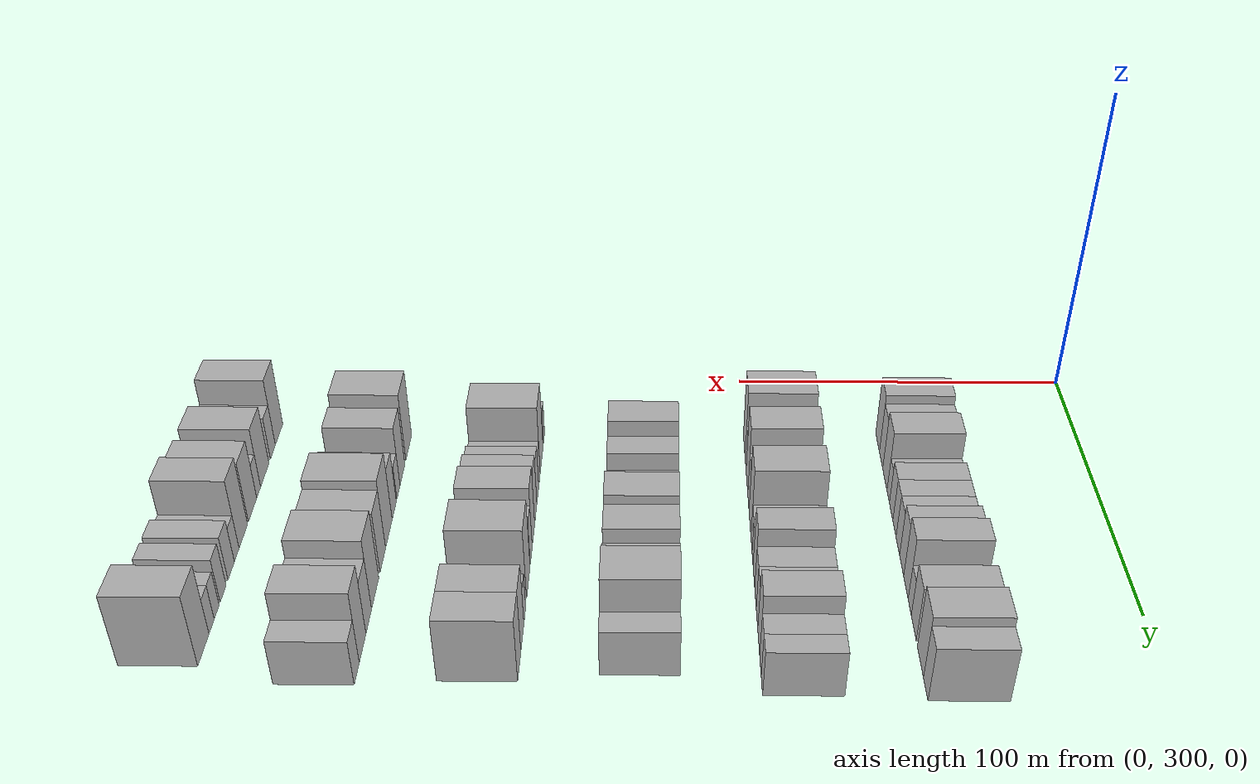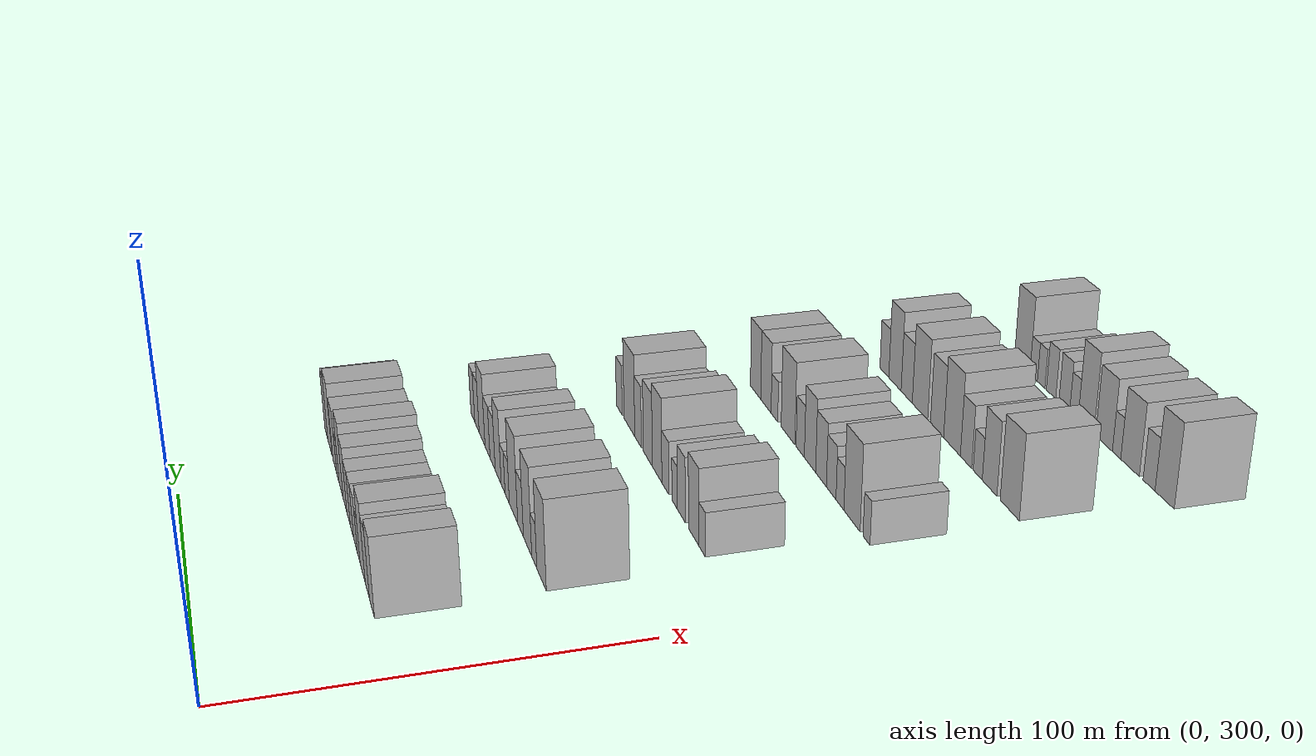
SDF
<sdf version="1.6">
 <world name="default">
  <model name="building_100">
   <static>1</static>
   <pose>50.0000 329.9913 0 0.000000 0.000000 0.000000</pose>
   <link name="link">
    <pose>0 0 10.50 0 0 0</pose>
    <collision name="collision"><geometry><box><size>20.0000 8.8696 21.0000</size></box></geometry></collision>
    <visual name="visual">
     <cast_shadows>0</cast_shadows>
     <geometry><box><size>20.0000 8.8696 21.0000</size></box></geometry>
     <material>
      <script>
       <uri>model://HANNAS_wall/materials/scripts</uri>
       <uri>model://HANNAS_wall/materials/textures</uri>
       <name>vrc/HANNAS_wall</name>
      </script>
     </material>
    </visual>
   </link>
  </model>
  <model name="building_101">
   <static>1</static>
   <pose>50.0000 338.2777 0 0.000000 0.000000 0.000000</pose>
   <link name="link">
    <pose>0 0 9.00 0 0 0</pose>
    <collision name="collision"><geometry><box><size>20.0000 7.7031 18.0000</size></box></geometry></collision>
    <visual name="visual">
     <cast_shadows>0</cast_shadows>
     <geometry><box><size>20.0000 7.7031 18.0000</size></box></geometry>
     <material>
      <script>
       <uri>model://HANNAS_wall/materials/scripts</uri>
       <uri>model://HANNAS_wall/materials/textures</uri>
       <name>vrc/HANNAS_wall</name>
      </script>
     </material>
    </visual>
   </link>
  </model>
  <model name="building_102">
   <static>1</static>
   <pose>50.0000 346.9442 0 0.000000 0.000000 0.000000</pose>
   <link name="link">
    <pose>0 0 10.50 0 0 0</pose>
    <collision name="collision"><geometry><box><size>20.0000 9.6299 21.0000</size></box></geometry></collision>
    <visual name="visual">
     <cast_shadows>0</cast_shadows>
     <geometry><box><size>20.0000 9.6299 21.0000</size></box></geometry>
     <material>
      <script>
       <uri>model://HANNAS_wall/materials/scripts</uri>
       <uri>model://HANNAS_wall/materials/textures</uri>
       <name>vrc/HANNAS_wall</name>
      </script>
     </material>
    </visual>
   </link>
  </model>
  <model name="building_103">
   <static>1</static>
   <pose>50.0000 354.4089 0 0.000000 0.000000 0.000000</pose>
   <link name="link">
    <pose>0 0 6.00 0 0 0</pose>
    <collision name="collision"><geometry><box><size>20.0000 5.2996 12.0000</size></box></geometry></collision>
    <visual name="visual">
     <cast_shadows>0</cast_shadows>
     <geometry><box><size>20.0000 5.2996 12.0000</size></box></geometry>
     <material>
      <script>
       <uri>model://HANNAS_wall/materials/scripts</uri>
       <uri>model://HANNAS_wall/materials/textures</uri>
       <name>vrc/HANNAS_wall</name>
      </script>
     </material>
    </visual>
   </link>
  </model>
  <model name="building_104">
   <static>1</static>
   <pose>50.0000 360.7432 0 0.000000 0.000000 0.000000</pose>
   <link name="link">
    <pose>0 0 7.50 0 0 0</pose>
    <collision name="collision"><geometry><box><size>20.0000 7.3689 15.0000</size></box></geometry></collision>
    <visual name="visual">
     <cast_shadows>0</cast_shadows>
     <geometry><box><size>20.0000 7.3689 15.0000</size></box></geometry>
     <material>
      <script>
       <uri>model://HANNAS_wall/materials/scripts</uri>
       <uri>model://HANNAS_wall/materials/textures</uri>
       <name>vrc/HANNAS_wall</name>
      </script>
     </material>
    </visual>
   </link>
  </model>
  <model name="building_105">
   <static>1</static>
   <pose>50.0000 367.7625 0 0.000000 0.000000 0.000000</pose>
   <link name="link">
    <pose>0 0 7.50 0 0 0</pose>
    <collision name="collision"><geometry><box><size>20.0000 6.6696 15.0000</size></box></geometry></collision>
    <visual name="visual">
     <cast_shadows>0</cast_shadows>
     <geometry><box><size>20.0000 6.6696 15.0000</size></box></geometry>
     <material>
      <script>
       <uri>model://HANNAS_wall/materials/scripts</uri>
       <uri>model://HANNAS_wall/materials/textures</uri>
       <name>vrc/HANNAS_wall</name>
      </script>
     </material>
    </visual>
   </link>
  </model>
  <model name="building_106">
   <static>1</static>
   <pose>50.0000 374.7107 0 0.000000 0.000000 0.000000</pose>
   <link name="link">
    <pose>0 0 7.50 0 0 0</pose>
    <collision name="collision"><geometry><box><size>20.0000 7.2268 15.0000</size></box></geometry></collision>
    <visual name="visual">
     <cast_shadows>0</cast_shadows>
     <geometry><box><size>20.0000 7.2268 15.0000</size></box></geometry>
     <material>
      <script>
       <uri>model://HANNAS_wall/materials/scripts</uri>
       <uri>model://HANNAS_wall/materials/textures</uri>
       <name>vrc/HANNAS_wall</name>
      </script>
     </material>
    </visual>
   </link>
  </model>
  <model name="building_107">
   <static>1</static>
   <pose>50.0000 382.3287 0 0.000000 0.000000 0.000000</pose>
   <link name="link">
    <pose>0 0 9.00 0 0 0</pose>
    <collision name="collision"><geometry><box><size>20.0000 8.0092 18.0000</size></box></geometry></collision>
    <visual name="visual">
     <cast_shadows>0</cast_shadows>
     <geometry><box><size>20.0000 8.0092 18.0000</size></box></geometry>
     <material>
      <script>
       <uri>model://HANNAS_wall/materials/scripts</uri>
       <uri>model://HANNAS_wall/materials/textures</uri>
       <name>vrc/HANNAS_wall</name>
      </script>
     </material>
    </visual>
   </link>
  </model>
  <model name="building_108">
   <static>1</static>
   <pose>50.0000 390.5908 0 0.000000 0.000000 0.000000</pose>
   <link name="link">
    <pose>0 0 10.50 0 0 0</pose>
    <collision name="collision"><geometry><box><size>20.0000 8.5150 21.0000</size></box></geometry></collision>
    <visual name="visual">
     <cast_shadows>0</cast_shadows>
     <geometry><box><size>20.0000 8.5150 21.0000</size></box></geometry>
     <material>
      <script>
       <uri>model://HANNAS_wall/materials/scripts</uri>
       <uri>model://HANNAS_wall/materials/textures</uri>
       <name>vrc/HANNAS_wall</name>
      </script>
     </material>
    </visual>
   </link>
  </model>
  <model name="building_109">
   <static>1</static>
   <pose>50.0000 397.7222 0 0.000000 0.000000 0.000000</pose>
   <link name="link">
    <pose>0 0 6.00 0 0 0</pose>
    <collision name="collision"><geometry><box><size>20.0000 5.7477 12.0000</size></box></geometry></collision>
    <visual name="visual">
     <cast_shadows>0</cast_shadows>
     <geometry><box><size>20.0000 5.7477 12.0000</size></box></geometry>
     <material>
      <script>
       <uri>model://HANNAS_wall/materials/scripts</uri>
       <uri>model://HANNAS_wall/materials/textures</uri>
       <name>vrc/HANNAS_wall</name>
      </script>
     </material>
    </visual>
   </link>
  </model>
  <model name="building_110">
   <static>1</static>
   <pose>50.0000 404.9812 0 0.000000 0.000000 0.000000</pose>
   <link name="link">
    <pose>0 0 9.00 0 0 0</pose>
    <collision name="collision"><geometry><box><size>20.0000 8.7704 18.0000</size></box></geometry></collision>
    <visual name="visual">
     <cast_shadows>0</cast_shadows>
     <geometry><box><size>20.0000 8.7704 18.0000</size></box></geometry>
     <material>
      <script>
       <uri>model://HANNAS_wall/materials/scripts</uri>
       <uri>model://HANNAS_wall/materials/textures</uri>
       <name>vrc/HANNAS_wall</name>
      </script>
     </material>
    </visual>
   </link>
  </model>
  <model name="building_111">
   <static>1</static>
   <pose>50.0000 416.4933 0 0.000000 0.000000 0.000000</pose>
   <link name="link">
    <pose>0 0 10.50 0 0 0</pose>
    <collision name="collision"><geometry><box><size>20.0000 10.2536 21.0000</size></box></geometry></collision>
    <visual name="visual">
     <cast_shadows>0</cast_shadows>
     <geometry><box><size>20.0000 10.2536 21.0000</size></box></geometry>
     <material>
      <script>
       <uri>model://HANNAS_wall/materials/scripts</uri>
       <uri>model://HANNAS_wall/materials/textures</uri>
       <name>vrc/HANNAS_wall</name>
      </script>
     </material>
    </visual>
   </link>
  </model>
  <model name="building_112">
   <static>1</static>
   <pose>50.0000 425.2875 0 0.000000 0.000000 0.000000</pose>
   <link name="link">
    <pose>0 0 9.00 0 0 0</pose>
    <collision name="collision"><geometry><box><size>20.0000 7.3349 18.0000</size></box></geometry></collision>
    <visual name="visual">
     <cast_shadows>0</cast_shadows>
     <geometry><box><size>20.0000 7.3349 18.0000</size></box></geometry>
     <material>
      <script>
       <uri>model://HANNAS_wall/materials/scripts</uri>
       <uri>model://HANNAS_wall/materials/textures</uri>
       <name>vrc/HANNAS_wall</name>
      </script>
     </material>
    </visual>
   </link>
  </model>
  <model name="building_240">
   <static>1</static>
   <pose>90.0000 332.2897 0 0.000000 0.000000 0.000000</pose>
   <link name="link">
    <pose>0 0 12.00 0 0 0</pose>
    <collision name="collision"><geometry><box><size>20.0000 10.8834 24.0000</size></box></geometry></collision>
    <visual name="visual">
     <cast_shadows>0</cast_shadows>
     <geometry><box><size>20.0000 10.8834 24.0000</size></box></geometry>
     <material>
      <script>
       <uri>model://HANNAS_wall/materials/scripts</uri>
       <uri>model://HANNAS_wall/materials/textures</uri>
       <name>vrc/HANNAS_wall</name>
      </script>
     </material>
    </visual>
   </link>
  </model>
  <model name="building_241">
   <static>1</static>
   <pose>90.0000 340.7151 0 0.000000 0.000000 0.000000</pose>
   <link name="link">
    <pose>0 0 6.00 0 0 0</pose>
    <collision name="collision"><geometry><box><size>20.0000 5.9675 12.0000</size></box></geometry></collision>
    <visual name="visual">
     <cast_shadows>0</cast_shadows>
     <geometry><box><size>20.0000 5.9675 12.0000</size></box></geometry>
     <material>
      <script>
       <uri>model://HANNAS_wall/materials/scripts</uri>
       <uri>model://HANNAS_wall/materials/textures</uri>
       <name>vrc/HANNAS_wall</name>
      </script>
     </material>
    </visual>
   </link>
  </model>
  <model name="building_242">
   <static>1</static>
   <pose>90.0000 348.7701 0 0.000000 0.000000 0.000000</pose>
   <link name="link">
    <pose>0 0 12.00 0 0 0</pose>
    <collision name="collision"><geometry><box><size>20.0000 10.1425 24.0000</size></box></geometry></collision>
    <visual name="visual">
     <cast_shadows>0</cast_shadows>
     <geometry><box><size>20.0000 10.1425 24.0000</size></box></geometry>
     <material>
      <script>
       <uri>model://HANNAS_wall/materials/scripts</uri>
       <uri>model://HANNAS_wall/materials/textures</uri>
       <name>vrc/HANNAS_wall</name>
      </script>
     </material>
    </visual>
   </link>
  </model>
  <model name="building_243">
   <static>1</static>
   <pose>90.0000 357.4268 0 0.000000 0.000000 0.000000</pose>
   <link name="link">
    <pose>0 0 7.50 0 0 0</pose>
    <collision name="collision"><geometry><box><size>20.0000 7.1709 15.0000</size></box></geometry></collision>
    <visual name="visual">
     <cast_shadows>0</cast_shadows>
     <geometry><box><size>20.0000 7.1709 15.0000</size></box></geometry>
     <material>
      <script>
       <uri>model://HANNAS_wall/materials/scripts</uri>
       <uri>model://HANNAS_wall/materials/textures</uri>
       <name>vrc/HANNAS_wall</name>
      </script>
     </material>
    </visual>
   </link>
  </model>
  <model name="building_244">
   <static>1</static>
   <pose>90.0000 366.4395 0 0.000000 0.000000 0.000000</pose>
   <link name="link">
    <pose>0 0 12.00 0 0 0</pose>
    <collision name="collision"><geometry><box><size>20.0000 10.8544 24.0000</size></box></geometry></collision>
    <visual name="visual">
     <cast_shadows>0</cast_shadows>
     <geometry><box><size>20.0000 10.8544 24.0000</size></box></geometry>
     <material>
      <script>
       <uri>model://HANNAS_wall/materials/scripts</uri>
       <uri>model://HANNAS_wall/materials/textures</uri>
       <name>vrc/HANNAS_wall</name>
      </script>
     </material>
    </visual>
   </link>
  </model>
  <model name="building_245">
   <static>1</static>
   <pose>90.0000 374.7660 0 0.000000 0.000000 0.000000</pose>
   <link name="link">
    <pose>0 0 6.00 0 0 0</pose>
    <collision name="collision"><geometry><box><size>20.0000 5.7987 12.0000</size></box></geometry></collision>
    <visual name="visual">
     <cast_shadows>0</cast_shadows>
     <geometry><box><size>20.0000 5.7987 12.0000</size></box></geometry>
     <material>
      <script>
       <uri>model://HANNAS_wall/materials/scripts</uri>
       <uri>model://HANNAS_wall/materials/textures</uri>
       <name>vrc/HANNAS_wall</name>
      </script>
     </material>
    </visual>
   </link>
  </model>
  <model name="building_246">
   <static>1</static>
   <pose>90.0000 380.2602 0 0.000000 0.000000 0.000000</pose>
   <link name="link">
    <pose>0 0 6.00 0 0 0</pose>
    <collision name="collision"><geometry><box><size>20.0000 5.1897 12.0000</size></box></geometry></collision>
    <visual name="visual">
     <cast_shadows>0</cast_shadows>
     <geometry><box><size>20.0000 5.1897 12.0000</size></box></geometry>
     <material>
      <script>
       <uri>model://HANNAS_wall/materials/scripts</uri>
       <uri>model://HANNAS_wall/materials/textures</uri>
       <name>vrc/HANNAS_wall</name>
      </script>
     </material>
    </visual>
   </link>
  </model>
  <model name="building_247">
   <static>1</static>
   <pose>90.0000 387.0678 0 0.000000 0.000000 0.000000</pose>
   <link name="link">
    <pose>0 0 10.50 0 0 0</pose>
    <collision name="collision"><geometry><box><size>20.0000 8.4255 21.0000</size></box></geometry></collision>
    <visual name="visual">
     <cast_shadows>0</cast_shadows>
     <geometry><box><size>20.0000 8.4255 21.0000</size></box></geometry>
     <material>
      <script>
       <uri>model://HANNAS_wall/materials/scripts</uri>
       <uri>model://HANNAS_wall/materials/textures</uri>
       <name>vrc/HANNAS_wall</name>
      </script>
     </material>
    </visual>
   </link>
  </model>
  <model name="building_248">
   <static>1</static>
   <pose>90.0000 394.9861 0 0.000000 0.000000 0.000000</pose>
   <link name="link">
    <pose>0 0 7.50 0 0 0</pose>
    <collision name="collision"><geometry><box><size>20.0000 7.4111 15.0000</size></box></geometry></collision>
    <visual name="visual">
     <cast_shadows>0</cast_shadows>
     <geometry><box><size>20.0000 7.4111 15.0000</size></box></geometry>
     <material>
      <script>
       <uri>model://HANNAS_wall/materials/scripts</uri>
       <uri>model://HANNAS_wall/materials/textures</uri>
       <name>vrc/HANNAS_wall</name>
      </script>
     </material>
    </visual>
   </link>
  </model>
  <model name="building_249">
   <static>1</static>
   <pose>90.0000 402.3871 0 0.000000 0.000000 0.000000</pose>
   <link name="link">
    <pose>0 0 7.50 0 0 0</pose>
    <collision name="collision"><geometry><box><size>20.0000 7.3908 15.0000</size></box></geometry></collision>
    <visual name="visual">
     <cast_shadows>0</cast_shadows>
     <geometry><box><size>20.0000 7.3908 15.0000</size></box></geometry>
     <material>
      <script>
       <uri>model://HANNAS_wall/materials/scripts</uri>
       <uri>model://HANNAS_wall/materials/textures</uri>
       <name>vrc/HANNAS_wall</name>
      </script>
     </material>
    </visual>
   </link>
  </model>
  <model name="building_250">
   <static>1</static>
   <pose>90.0000 410.5227 0 0.000000 0.000000 0.000000</pose>
   <link name="link">
    <pose>0 0 10.50 0 0 0</pose>
    <collision name="collision"><geometry><box><size>20.0000 8.8805 21.0000</size></box></geometry></collision>
    <visual name="visual">
     <cast_shadows>0</cast_shadows>
     <geometry><box><size>20.0000 8.8805 21.0000</size></box></geometry>
     <material>
      <script>
       <uri>model://HANNAS_wall/materials/scripts</uri>
       <uri>model://HANNAS_wall/materials/textures</uri>
       <name>vrc/HANNAS_wall</name>
      </script>
     </material>
    </visual>
   </link>
  </model>
  <model name="building_251">
   <static>1</static>
   <pose>90.0000 418.3257 0 0.000000 0.000000 0.000000</pose>
   <link name="link">
    <pose>0 0 7.50 0 0 0</pose>
    <collision name="collision"><geometry><box><size>20.0000 6.7255 15.0000</size></box></geometry></collision>
    <visual name="visual">
     <cast_shadows>0</cast_shadows>
     <geometry><box><size>20.0000 6.7255 15.0000</size></box></geometry>
     <material>
      <script>
       <uri>model://HANNAS_wall/materials/scripts</uri>
       <uri>model://HANNAS_wall/materials/textures</uri>
       <name>vrc/HANNAS_wall</name>
      </script>
     </material>
    </visual>
   </link>
  </model>
  <model name="building_252">
   <static>1</static>
   <pose>90.0000 424.7276 0 0.000000 0.000000 0.000000</pose>
   <link name="link">
    <pose>0 0 7.50 0 0 0</pose>
    <collision name="collision"><geometry><box><size>20.0000 6.0783 15.0000</size></box></geometry></collision>
    <visual name="visual">
     <cast_shadows>0</cast_shadows>
     <geometry><box><size>20.0000 6.0783 15.0000</size></box></geometry>
     <material>
      <script>
       <uri>model://HANNAS_wall/materials/scripts</uri>
       <uri>model://HANNAS_wall/materials/textures</uri>
       <name>vrc/HANNAS_wall</name>
      </script>
     </material>
    </visual>
   </link>
  </model>
  <model name="building_382">
   <static>1</static>
   <pose>130.0000 334.9451 0 0.000000 0.000000 0.000000</pose>
   <link name="link">
    <pose>0 0 6.00 0 0 0</pose>
    <collision name="collision"><geometry><box><size>20.0000 5.6402 12.0000</size></box></geometry></collision>
    <visual name="visual">
     <cast_shadows>0</cast_shadows>
     <geometry><box><size>20.0000 5.6402 12.0000</size></box></geometry>
     <material>
      <script>
       <uri>model://HANNAS_wall/materials/scripts</uri>
       <uri>model://HANNAS_wall/materials/textures</uri>
       <name>vrc/HANNAS_wall</name>
      </script>
     </material>
    </visual>
   </link>
  </model>
  <model name="building_383">
   <static>1</static>
   <pose>130.0000 342.4481 0 0.000000 0.000000 0.000000</pose>
   <link name="link">
    <pose>0 0 10.50 0 0 0</pose>
    <collision name="collision"><geometry><box><size>20.0000 9.3658 21.0000</size></box></geometry></collision>
    <visual name="visual">
     <cast_shadows>0</cast_shadows>
     <geometry><box><size>20.0000 9.3658 21.0000</size></box></geometry>
     <material>
      <script>
       <uri>model://HANNAS_wall/materials/scripts</uri>
       <uri>model://HANNAS_wall/materials/textures</uri>
       <name>vrc/HANNAS_wall</name>
      </script>
     </material>
    </visual>
   </link>
  </model>
  <model name="building_384">
   <static>1</static>
   <pose>130.0000 353.9108 0 0.000000 0.000000 0.000000</pose>
   <link name="link">
    <pose>0 0 9.00 0 0 0</pose>
    <collision name="collision"><geometry><box><size>20.0000 7.5595 18.0000</size></box></geometry></collision>
    <visual name="visual">
     <cast_shadows>0</cast_shadows>
     <geometry><box><size>20.0000 7.5595 18.0000</size></box></geometry>
     <material>
      <script>
       <uri>model://HANNAS_wall/materials/scripts</uri>
       <uri>model://HANNAS_wall/materials/textures</uri>
       <name>vrc/HANNAS_wall</name>
      </script>
     </material>
    </visual>
   </link>
  </model>
  <model name="building_385">
   <static>1</static>
   <pose>130.0000 360.1818 0 0.000000 0.000000 0.000000</pose>
   <link name="link">
    <pose>0 0 6.00 0 0 0</pose>
    <collision name="collision"><geometry><box><size>20.0000 4.9825 12.0000</size></box></geometry></collision>
    <visual name="visual">
     <cast_shadows>0</cast_shadows>
     <geometry><box><size>20.0000 4.9825 12.0000</size></box></geometry>
     <material>
      <script>
       <uri>model://HANNAS_wall/materials/scripts</uri>
       <uri>model://HANNAS_wall/materials/textures</uri>
       <name>vrc/HANNAS_wall</name>
      </script>
     </material>
    </visual>
   </link>
  </model>
  <model name="building_386">
   <static>1</static>
   <pose>130.0000 369.0733 0 0.000000 0.000000 0.000000</pose>
   <link name="link">
    <pose>0 0 7.50 0 0 0</pose>
    <collision name="collision"><geometry><box><size>20.0000 6.8006 15.0000</size></box></geometry></collision>
    <visual name="visual">
     <cast_shadows>0</cast_shadows>
     <geometry><box><size>20.0000 6.8006 15.0000</size></box></geometry>
     <material>
      <script>
       <uri>model://HANNAS_wall/materials/scripts</uri>
       <uri>model://HANNAS_wall/materials/textures</uri>
       <name>vrc/HANNAS_wall</name>
      </script>
     </material>
    </visual>
   </link>
  </model>
  <model name="building_387">
   <static>1</static>
   <pose>130.0000 377.2882 0 0.000000 0.000000 0.000000</pose>
   <link name="link">
    <pose>0 0 12.00 0 0 0</pose>
    <collision name="collision"><geometry><box><size>20.0000 9.6292 24.0000</size></box></geometry></collision>
    <visual name="visual">
     <cast_shadows>0</cast_shadows>
     <geometry><box><size>20.0000 9.6292 24.0000</size></box></geometry>
     <material>
      <script>
       <uri>model://HANNAS_wall/materials/scripts</uri>
       <uri>model://HANNAS_wall/materials/textures</uri>
       <name>vrc/HANNAS_wall</name>
      </script>
     </material>
    </visual>
   </link>
  </model>
  <model name="building_388">
   <static>1</static>
   <pose>130.0000 386.8470 0 0.000000 0.000000 0.000000</pose>
   <link name="link">
    <pose>0 0 10.50 0 0 0</pose>
    <collision name="collision"><geometry><box><size>20.0000 9.4883 21.0000</size></box></geometry></collision>
    <visual name="visual">
     <cast_shadows>0</cast_shadows>
     <geometry><box><size>20.0000 9.4883 21.0000</size></box></geometry>
     <material>
      <script>
       <uri>model://HANNAS_wall/materials/scripts</uri>
       <uri>model://HANNAS_wall/materials/textures</uri>
       <name>vrc/HANNAS_wall</name>
      </script>
     </material>
    </visual>
   </link>
  </model>
  <model name="building_389">
   <static>1</static>
   <pose>130.0000 397.2224 0 0.000000 0.000000 0.000000</pose>
   <link name="link">
    <pose>0 0 9.00 0 0 0</pose>
    <collision name="collision"><geometry><box><size>20.0000 7.2627 18.0000</size></box></geometry></collision>
    <visual name="visual">
     <cast_shadows>0</cast_shadows>
     <geometry><box><size>20.0000 7.2627 18.0000</size></box></geometry>
     <material>
      <script>
       <uri>model://HANNAS_wall/materials/scripts</uri>
       <uri>model://HANNAS_wall/materials/textures</uri>
       <name>vrc/HANNAS_wall</name>
      </script>
     </material>
    </visual>
   </link>
  </model>
  <model name="building_390">
   <static>1</static>
   <pose>130.0000 406.8405 0 0.000000 0.000000 0.000000</pose>
   <link name="link">
    <pose>0 0 12.00 0 0 0</pose>
    <collision name="collision"><geometry><box><size>20.0000 11.9735 24.0000</size></box></geometry></collision>
    <visual name="visual">
     <cast_shadows>0</cast_shadows>
     <geometry><box><size>20.0000 11.9735 24.0000</size></box></geometry>
     <material>
      <script>
       <uri>model://HANNAS_wall/materials/scripts</uri>
       <uri>model://HANNAS_wall/materials/textures</uri>
       <name>vrc/HANNAS_wall</name>
      </script>
     </material>
    </visual>
   </link>
  </model>
  <model name="building_391">
   <static>1</static>
   <pose>130.0000 418.2376 0 0.000000 0.000000 0.000000</pose>
   <link name="link">
    <pose>0 0 7.50 0 0 0</pose>
    <collision name="collision"><geometry><box><size>20.0000 6.8206 15.0000</size></box></geometry></collision>
    <visual name="visual">
     <cast_shadows>0</cast_shadows>
     <geometry><box><size>20.0000 6.8206 15.0000</size></box></geometry>
     <material>
      <script>
       <uri>model://HANNAS_wall/materials/scripts</uri>
       <uri>model://HANNAS_wall/materials/textures</uri>
       <name>vrc/HANNAS_wall</name>
      </script>
     </material>
    </visual>
   </link>
  </model>
  <model name="building_513">
   <static>1</static>
   <pose>170.0000 329.1800 0 0.000000 0.000000 0.000000</pose>
   <link name="link">
    <pose>0 0 6.00 0 0 0</pose>
    <collision name="collision"><geometry><box><size>20.0000 4.9258 12.0000</size></box></geometry></collision>
    <visual name="visual">
     <cast_shadows>0</cast_shadows>
     <geometry><box><size>20.0000 4.9258 12.0000</size></box></geometry>
     <material>
      <script>
       <uri>model://HANNAS_wall/materials/scripts</uri>
       <uri>model://HANNAS_wall/materials/textures</uri>
       <name>vrc/HANNAS_wall</name>
      </script>
     </material>
    </visual>
   </link>
  </model>
  <model name="building_514">
   <static>1</static>
   <pose>170.0000 339.5415 0 0.000000 0.000000 0.000000</pose>
   <link name="link">
    <pose>0 0 12.00 0 0 0</pose>
    <collision name="collision"><geometry><box><size>20.0000 11.7973 24.0000</size></box></geometry></collision>
    <visual name="visual">
     <cast_shadows>0</cast_shadows>
     <geometry><box><size>20.0000 11.7973 24.0000</size></box></geometry>
     <material>
      <script>
       <uri>model://HANNAS_wall/materials/scripts</uri>
       <uri>model://HANNAS_wall/materials/textures</uri>
       <name>vrc/HANNAS_wall</name>
      </script>
     </material>
    </visual>
   </link>
  </model>
  <model name="building_515">
   <static>1</static>
   <pose>170.0000 348.3862 0 0.000000 0.000000 0.000000</pose>
   <link name="link">
    <pose>0 0 6.00 0 0 0</pose>
    <collision name="collision"><geometry><box><size>20.0000 5.8921 12.0000</size></box></geometry></collision>
    <visual name="visual">
     <cast_shadows>0</cast_shadows>
     <geometry><box><size>20.0000 5.8921 12.0000</size></box></geometry>
     <material>
      <script>
       <uri>model://HANNAS_wall/materials/scripts</uri>
       <uri>model://HANNAS_wall/materials/textures</uri>
       <name>vrc/HANNAS_wall</name>
      </script>
     </material>
    </visual>
   </link>
  </model>
  <model name="building_516">
   <static>1</static>
   <pose>170.0000 355.0054 0 0.000000 0.000000 0.000000</pose>
   <link name="link">
    <pose>0 0 7.50 0 0 0</pose>
    <collision name="collision"><geometry><box><size>20.0000 7.3463 15.0000</size></box></geometry></collision>
    <visual name="visual">
     <cast_shadows>0</cast_shadows>
     <geometry><box><size>20.0000 7.3463 15.0000</size></box></geometry>
     <material>
      <script>
       <uri>model://HANNAS_wall/materials/scripts</uri>
       <uri>model://HANNAS_wall/materials/textures</uri>
       <name>vrc/HANNAS_wall</name>
      </script>
     </material>
    </visual>
   </link>
  </model>
  <model name="building_517">
   <static>1</static>
   <pose>170.0000 362.9129 0 0.000000 0.000000 0.000000</pose>
   <link name="link">
    <pose>0 0 9.00 0 0 0</pose>
    <collision name="collision"><geometry><box><size>20.0000 8.4688 18.0000</size></box></geometry></collision>
    <visual name="visual">
     <cast_shadows>0</cast_shadows>
     <geometry><box><size>20.0000 8.4688 18.0000</size></box></geometry>
     <material>
      <script>
       <uri>model://HANNAS_wall/materials/scripts</uri>
       <uri>model://HANNAS_wall/materials/textures</uri>
       <name>vrc/HANNAS_wall</name>
      </script>
     </material>
    </visual>
   </link>
  </model>
  <model name="building_518">
   <static>1</static>
   <pose>170.0000 371.7004 0 0.000000 0.000000 0.000000</pose>
   <link name="link">
    <pose>0 0 10.50 0 0 0</pose>
    <collision name="collision"><geometry><box><size>20.0000 9.1062 21.0000</size></box></geometry></collision>
    <visual name="visual">
     <cast_shadows>0</cast_shadows>
     <geometry><box><size>20.0000 9.1062 21.0000</size></box></geometry>
     <material>
      <script>
       <uri>model://HANNAS_wall/materials/scripts</uri>
       <uri>model://HANNAS_wall/materials/textures</uri>
       <name>vrc/HANNAS_wall</name>
      </script>
     </material>
    </visual>
   </link>
  </model>
  <model name="building_519">
   <static>1</static>
   <pose>170.0000 379.7065 0 0.000000 0.000000 0.000000</pose>
   <link name="link">
    <pose>0 0 7.50 0 0 0</pose>
    <collision name="collision"><geometry><box><size>20.0000 6.9060 15.0000</size></box></geometry></collision>
    <visual name="visual">
     <cast_shadows>0</cast_shadows>
     <geometry><box><size>20.0000 6.9060 15.0000</size></box></geometry>
     <material>
      <script>
       <uri>model://HANNAS_wall/materials/scripts</uri>
       <uri>model://HANNAS_wall/materials/textures</uri>
       <name>vrc/HANNAS_wall</name>
      </script>
     </material>
    </visual>
   </link>
  </model>
  <model name="building_520">
   <static>1</static>
   <pose>170.0000 390.0631 0 0.000000 0.000000 0.000000</pose>
   <link name="link">
    <pose>0 0 12.00 0 0 0</pose>
    <collision name="collision"><geometry><box><size>20.0000 11.8073 24.0000</size></box></geometry></collision>
    <visual name="visual">
     <cast_shadows>0</cast_shadows>
     <geometry><box><size>20.0000 11.8073 24.0000</size></box></geometry>
     <material>
      <script>
       <uri>model://HANNAS_wall/materials/scripts</uri>
       <uri>model://HANNAS_wall/materials/textures</uri>
       <name>vrc/HANNAS_wall</name>
      </script>
     </material>
    </visual>
   </link>
  </model>
  <model name="building_521">
   <static>1</static>
   <pose>170.0000 401.9366 0 0.000000 0.000000 0.000000</pose>
   <link name="link">
    <pose>0 0 6.00 0 0 0</pose>
    <collision name="collision"><geometry><box><size>20.0000 5.9398 12.0000</size></box></geometry></collision>
    <visual name="visual">
     <cast_shadows>0</cast_shadows>
     <geometry><box><size>20.0000 5.9398 12.0000</size></box></geometry>
     <material>
      <script>
       <uri>model://HANNAS_wall/materials/scripts</uri>
       <uri>model://HANNAS_wall/materials/textures</uri>
       <name>vrc/HANNAS_wall</name>
      </script>
     </material>
    </visual>
   </link>
  </model>
  <model name="building_522">
   <static>1</static>
   <pose>170.0000 409.6392 0 0.000000 0.000000 0.000000</pose>
   <link name="link">
    <pose>0 0 10.50 0 0 0</pose>
    <collision name="collision"><geometry><box><size>20.0000 9.4653 21.0000</size></box></geometry></collision>
    <visual name="visual">
     <cast_shadows>0</cast_shadows>
     <geometry><box><size>20.0000 9.4653 21.0000</size></box></geometry>
     <material>
      <script>
       <uri>model://HANNAS_wall/materials/scripts</uri>
       <uri>model://HANNAS_wall/materials/textures</uri>
       <name>vrc/HANNAS_wall</name>
      </script>
     </material>
    </visual>
   </link>
  </model>
  <model name="building_523">
   <static>1</static>
   <pose>170.0000 419.2521 0 0.000000 0.000000 0.000000</pose>
   <link name="link">
    <pose>0 0 10.50 0 0 0</pose>
    <collision name="collision"><geometry><box><size>20.0000 9.7606 21.0000</size></box></geometry></collision>
    <visual name="visual">
     <cast_shadows>0</cast_shadows>
     <geometry><box><size>20.0000 9.7606 21.0000</size></box></geometry>
     <material>
      <script>
       <uri>model://HANNAS_wall/materials/scripts</uri>
       <uri>model://HANNAS_wall/materials/textures</uri>
       <name>vrc/HANNAS_wall</name>
      </script>
     </material>
    </visual>
   </link>
  </model>
  <model name="building_652">
   <static>1</static>
   <pose>210.0000 334.0176 0 0.000000 0.000000 0.000000</pose>
   <link name="link">
    <pose>0 0 12.00 0 0 0</pose>
    <collision name="collision"><geometry><box><size>20.0000 11.6794 24.0000</size></box></geometry></collision>
    <visual name="visual">
     <cast_shadows>0</cast_shadows>
     <geometry><box><size>20.0000 11.6794 24.0000</size></box></geometry>
     <material>
      <script>
       <uri>model://HANNAS_wall/materials/scripts</uri>
       <uri>model://HANNAS_wall/materials/textures</uri>
       <name>vrc/HANNAS_wall</name>
      </script>
     </material>
    </visual>
   </link>
  </model>
  <model name="building_653">
   <static>1</static>
   <pose>210.0000 346.5158 0 0.000000 0.000000 0.000000</pose>
   <link name="link">
    <pose>0 0 10.50 0 0 0</pose>
    <collision name="collision"><geometry><box><size>20.0000 9.3170 21.0000</size></box></geometry></collision>
    <visual name="visual">
     <cast_shadows>0</cast_shadows>
     <geometry><box><size>20.0000 9.3170 21.0000</size></box></geometry>
     <material>
      <script>
       <uri>model://HANNAS_wall/materials/scripts</uri>
       <uri>model://HANNAS_wall/materials/textures</uri>
       <name>vrc/HANNAS_wall</name>
      </script>
     </material>
    </visual>
   </link>
  </model>
  <model name="building_654">
   <static>1</static>
   <pose>210.0000 354.1479 0 0.000000 0.000000 0.000000</pose>
   <link name="link">
    <pose>0 0 6.00 0 0 0</pose>
    <collision name="collision"><geometry><box><size>20.0000 5.9473 12.0000</size></box></geometry></collision>
    <visual name="visual">
     <cast_shadows>0</cast_shadows>
     <geometry><box><size>20.0000 5.9473 12.0000</size></box></geometry>
     <material>
      <script>
       <uri>model://HANNAS_wall/materials/scripts</uri>
       <uri>model://HANNAS_wall/materials/textures</uri>
       <name>vrc/HANNAS_wall</name>
      </script>
     </material>
    </visual>
   </link>
  </model>
  <model name="building_655">
   <static>1</static>
   <pose>210.0000 361.9073 0 0.000000 0.000000 0.000000</pose>
   <link name="link">
    <pose>0 0 9.00 0 0 0</pose>
    <collision name="collision"><geometry><box><size>20.0000 7.5716 18.0000</size></box></geometry></collision>
    <visual name="visual">
     <cast_shadows>0</cast_shadows>
     <geometry><box><size>20.0000 7.5716 18.0000</size></box></geometry>
     <material>
      <script>
       <uri>model://HANNAS_wall/materials/scripts</uri>
       <uri>model://HANNAS_wall/materials/textures</uri>
       <name>vrc/HANNAS_wall</name>
      </script>
     </material>
    </visual>
   </link>
  </model>
  <model name="building_656">
   <static>1</static>
   <pose>210.0000 371.4664 0 0.000000 0.000000 0.000000</pose>
   <link name="link">
    <pose>0 0 12.00 0 0 0</pose>
    <collision name="collision"><geometry><box><size>20.0000 11.5466 24.0000</size></box></geometry></collision>
    <visual name="visual">
     <cast_shadows>0</cast_shadows>
     <geometry><box><size>20.0000 11.5466 24.0000</size></box></geometry>
     <material>
      <script>
       <uri>model://HANNAS_wall/materials/scripts</uri>
       <uri>model://HANNAS_wall/materials/textures</uri>
       <name>vrc/HANNAS_wall</name>
      </script>
     </material>
    </visual>
   </link>
  </model>
  <model name="building_657">
   <static>1</static>
   <pose>210.0000 381.9689 0 0.000000 0.000000 0.000000</pose>
   <link name="link">
    <pose>0 0 10.50 0 0 0</pose>
    <collision name="collision"><geometry><box><size>20.0000 9.4584 21.0000</size></box></geometry></collision>
    <visual name="visual">
     <cast_shadows>0</cast_shadows>
     <geometry><box><size>20.0000 9.4584 21.0000</size></box></geometry>
     <material>
      <script>
       <uri>model://HANNAS_wall/materials/scripts</uri>
       <uri>model://HANNAS_wall/materials/textures</uri>
       <name>vrc/HANNAS_wall</name>
      </script>
     </material>
    </visual>
   </link>
  </model>
  <model name="building_658">
   <static>1</static>
   <pose>210.0000 394.4237 0 0.000000 0.000000 0.000000</pose>
   <link name="link">
    <pose>0 0 12.00 0 0 0</pose>
    <collision name="collision"><geometry><box><size>20.0000 11.4513 24.0000</size></box></geometry></collision>
    <visual name="visual">
     <cast_shadows>0</cast_shadows>
     <geometry><box><size>20.0000 11.4513 24.0000</size></box></geometry>
     <material>
      <script>
       <uri>model://HANNAS_wall/materials/scripts</uri>
       <uri>model://HANNAS_wall/materials/textures</uri>
       <name>vrc/HANNAS_wall</name>
      </script>
     </material>
    </visual>
   </link>
  </model>
  <model name="building_659">
   <static>1</static>
   <pose>210.0000 404.4525 0 0.000000 0.000000 0.000000</pose>
   <link name="link">
    <pose>0 0 9.00 0 0 0</pose>
    <collision name="collision"><geometry><box><size>20.0000 8.6062 18.0000</size></box></geometry></collision>
    <visual name="visual">
     <cast_shadows>0</cast_shadows>
     <geometry><box><size>20.0000 8.6062 18.0000</size></box></geometry>
     <material>
      <script>
       <uri>model://HANNAS_wall/materials/scripts</uri>
       <uri>model://HANNAS_wall/materials/textures</uri>
       <name>vrc/HANNAS_wall</name>
      </script>
     </material>
    </visual>
   </link>
  </model>
  <model name="building_660">
   <static>1</static>
   <pose>210.0000 413.6247 0 0.000000 0.000000 0.000000</pose>
   <link name="link">
    <pose>0 0 12.00 0 0 0</pose>
    <collision name="collision"><geometry><box><size>20.0000 9.7383 24.0000</size></box></geometry></collision>
    <visual name="visual">
     <cast_shadows>0</cast_shadows>
     <geometry><box><size>20.0000 9.7383 24.0000</size></box></geometry>
     <material>
      <script>
       <uri>model://HANNAS_wall/materials/scripts</uri>
       <uri>model://HANNAS_wall/materials/textures</uri>
       <name>vrc/HANNAS_wall</name>
      </script>
     </material>
    </visual>
   </link>
  </model>
  <model name="building_661">
   <static>1</static>
   <pose>210.0000 422.0757 0 0.000000 0.000000 0.000000</pose>
   <link name="link">
    <pose>0 0 7.50 0 0 0</pose>
    <collision name="collision"><geometry><box><size>20.0000 7.1635 15.0000</size></box></geometry></collision>
    <visual name="visual">
     <cast_shadows>0</cast_shadows>
     <geometry><box><size>20.0000 7.1635 15.0000</size></box></geometry>
     <material>
      <script>
       <uri>model://HANNAS_wall/materials/scripts</uri>
       <uri>model://HANNAS_wall/materials/textures</uri>
       <name>vrc/HANNAS_wall</name>
      </script>
     </material>
    </visual>
   </link>
  </model>
  <model name="building_791">
   <static>1</static>
   <pose>250.0000 328.2696 0 0.000000 0.000000 0.000000</pose>
   <link name="link">
    <pose>0 0 12.00 0 0 0</pose>
    <collision name="collision"><geometry><box><size>20.0000 10.1395 24.0000</size></box></geometry></collision>
    <visual name="visual">
     <cast_shadows>0</cast_shadows>
     <geometry><box><size>20.0000 10.1395 24.0000</size></box></geometry>
     <material>
      <script>
       <uri>model://HANNAS_wall/materials/scripts</uri>
       <uri>model://HANNAS_wall/materials/textures</uri>
       <name>vrc/HANNAS_wall</name>
      </script>
     </material>
    </visual>
   </link>
  </model>
  <model name="building_792">
   <static>1</static>
   <pose>250.0000 336.5916 0 0.000000 0.000000 0.000000</pose>
   <link name="link">
    <pose>0 0 7.50 0 0 0</pose>
    <collision name="collision"><geometry><box><size>20.0000 6.5045 15.0000</size></box></geometry></collision>
    <visual name="visual">
     <cast_shadows>0</cast_shadows>
     <geometry><box><size>20.0000 6.5045 15.0000</size></box></geometry>
     <material>
      <script>
       <uri>model://HANNAS_wall/materials/scripts</uri>
       <uri>model://HANNAS_wall/materials/textures</uri>
       <name>vrc/HANNAS_wall</name>
      </script>
     </material>
    </visual>
   </link>
  </model>
  <model name="building_793">
   <static>1</static>
   <pose>250.0000 347.0875 0 0.000000 0.000000 0.000000</pose>
   <link name="link">
    <pose>0 0 10.50 0 0 0</pose>
    <collision name="collision"><geometry><box><size>20.0000 10.4873 21.0000</size></box></geometry></collision>
    <visual name="visual">
     <cast_shadows>0</cast_shadows>
     <geometry><box><size>20.0000 10.4873 21.0000</size></box></geometry>
     <material>
      <script>
       <uri>model://HANNAS_wall/materials/scripts</uri>
       <uri>model://HANNAS_wall/materials/textures</uri>
       <name>vrc/HANNAS_wall</name>
      </script>
     </material>
    </visual>
   </link>
  </model>
  <model name="building_794">
   <static>1</static>
   <pose>250.0000 354.7359 0 0.000000 0.000000 0.000000</pose>
   <link name="link">
    <pose>0 0 6.00 0 0 0</pose>
    <collision name="collision"><geometry><box><size>20.0000 4.8095 12.0000</size></box></geometry></collision>
    <visual name="visual">
     <cast_shadows>0</cast_shadows>
     <geometry><box><size>20.0000 4.8095 12.0000</size></box></geometry>
     <material>
      <script>
       <uri>model://HANNAS_wall/materials/scripts</uri>
       <uri>model://HANNAS_wall/materials/textures</uri>
       <name>vrc/HANNAS_wall</name>
      </script>
     </material>
    </visual>
   </link>
  </model>
  <model name="building_795">
   <static>1</static>
   <pose>250.0000 362.1087 0 0.000000 0.000000 0.000000</pose>
   <link name="link">
    <pose>0 0 10.50 0 0 0</pose>
    <collision name="collision"><geometry><box><size>20.0000 9.9361 21.0000</size></box></geometry></collision>
    <visual name="visual">
     <cast_shadows>0</cast_shadows>
     <geometry><box><size>20.0000 9.9361 21.0000</size></box></geometry>
     <material>
      <script>
       <uri>model://HANNAS_wall/materials/scripts</uri>
       <uri>model://HANNAS_wall/materials/textures</uri>
       <name>vrc/HANNAS_wall</name>
      </script>
     </material>
    </visual>
   </link>
  </model>
  <model name="building_796">
   <static>1</static>
   <pose>250.0000 372.9285 0 0.000000 0.000000 0.000000</pose>
   <link name="link">
    <pose>0 0 12.00 0 0 0</pose>
    <collision name="collision"><geometry><box><size>20.0000 9.7035 24.0000</size></box></geometry></collision>
    <visual name="visual">
     <cast_shadows>0</cast_shadows>
     <geometry><box><size>20.0000 9.7035 24.0000</size></box></geometry>
     <material>
      <script>
       <uri>model://HANNAS_wall/materials/scripts</uri>
       <uri>model://HANNAS_wall/materials/textures</uri>
       <name>vrc/HANNAS_wall</name>
      </script>
     </material>
    </visual>
   </link>
  </model>
  <model name="building_797">
   <static>1</static>
   <pose>250.0000 380.3935 0 0.000000 0.000000 0.000000</pose>
   <link name="link">
    <pose>0 0 6.00 0 0 0</pose>
    <collision name="collision"><geometry><box><size>20.0000 5.2266 12.0000</size></box></geometry></collision>
    <visual name="visual">
     <cast_shadows>0</cast_shadows>
     <geometry><box><size>20.0000 5.2266 12.0000</size></box></geometry>
     <material>
      <script>
       <uri>model://HANNAS_wall/materials/scripts</uri>
       <uri>model://HANNAS_wall/materials/textures</uri>
       <name>vrc/HANNAS_wall</name>
      </script>
     </material>
    </visual>
   </link>
  </model>
  <model name="building_798">
   <static>1</static>
   <pose>250.0000 386.4577 0 0.000000 0.000000 0.000000</pose>
   <link name="link">
    <pose>0 0 7.50 0 0 0</pose>
    <collision name="collision"><geometry><box><size>20.0000 6.9018 15.0000</size></box></geometry></collision>
    <visual name="visual">
     <cast_shadows>0</cast_shadows>
     <geometry><box><size>20.0000 6.9018 15.0000</size></box></geometry>
     <material>
      <script>
       <uri>model://HANNAS_wall/materials/scripts</uri>
       <uri>model://HANNAS_wall/materials/textures</uri>
       <name>vrc/HANNAS_wall</name>
      </script>
     </material>
    </visual>
   </link>
  </model>
  <model name="building_799">
   <static>1</static>
   <pose>250.0000 395.0177 0 0.000000 0.000000 0.000000</pose>
   <link name="link">
    <pose>0 0 7.50 0 0 0</pose>
    <collision name="collision"><geometry><box><size>20.0000 6.2181 15.0000</size></box></geometry></collision>
    <visual name="visual">
     <cast_shadows>0</cast_shadows>
     <geometry><box><size>20.0000 6.2181 15.0000</size></box></geometry>
     <material>
      <script>
       <uri>model://HANNAS_wall/materials/scripts</uri>
       <uri>model://HANNAS_wall/materials/textures</uri>
       <name>vrc/HANNAS_wall</name>
      </script>
     </material>
    </visual>
   </link>
  </model>
  <model name="building_800">
   <static>1</static>
   <pose>250.0000 401.6250 0 0.000000 0.000000 0.000000</pose>
   <link name="link">
    <pose>0 0 6.00 0 0 0</pose>
    <collision name="collision"><geometry><box><size>20.0000 4.9965 12.0000</size></box></geometry></collision>
    <visual name="visual">
     <cast_shadows>0</cast_shadows>
     <geometry><box><size>20.0000 4.9965 12.0000</size></box></geometry>
     <material>
      <script>
       <uri>model://HANNAS_wall/materials/scripts</uri>
       <uri>model://HANNAS_wall/materials/textures</uri>
       <name>vrc/HANNAS_wall</name>
      </script>
     </material>
    </visual>
   </link>
  </model>
  <model name="building_801">
   <static>1</static>
   <pose>250.0000 406.6882 0 0.000000 0.000000 0.000000</pose>
   <link name="link">
    <pose>0 0 6.00 0 0 0</pose>
    <collision name="collision"><geometry><box><size>20.0000 5.1298 12.0000</size></box></geometry></collision>
    <visual name="visual">
     <cast_shadows>0</cast_shadows>
     <geometry><box><size>20.0000 5.1298 12.0000</size></box></geometry>
     <material>
      <script>
       <uri>model://HANNAS_wall/materials/scripts</uri>
       <uri>model://HANNAS_wall/materials/textures</uri>
       <name>vrc/HANNAS_wall</name>
      </script>
     </material>
    </visual>
   </link>
  </model>
  <model name="building_802">
   <static>1</static>
   <pose>250.0000 414.6625 0 0.000000 0.000000 0.000000</pose>
   <link name="link">
    <pose>0 0 12.00 0 0 0</pose>
    <collision name="collision"><geometry><box><size>20.0000 10.8187 24.0000</size></box></geometry></collision>
    <visual name="visual">
     <cast_shadows>0</cast_shadows>
     <geometry><box><size>20.0000 10.8187 24.0000</size></box></geometry>
     <material>
      <script>
       <uri>model://HANNAS_wall/materials/scripts</uri>
       <uri>model://HANNAS_wall/materials/textures</uri>
       <name>vrc/HANNAS_wall</name>
      </script>
     </material>
    </visual>
   </link>
  </model>
 </world>
</sdf>
